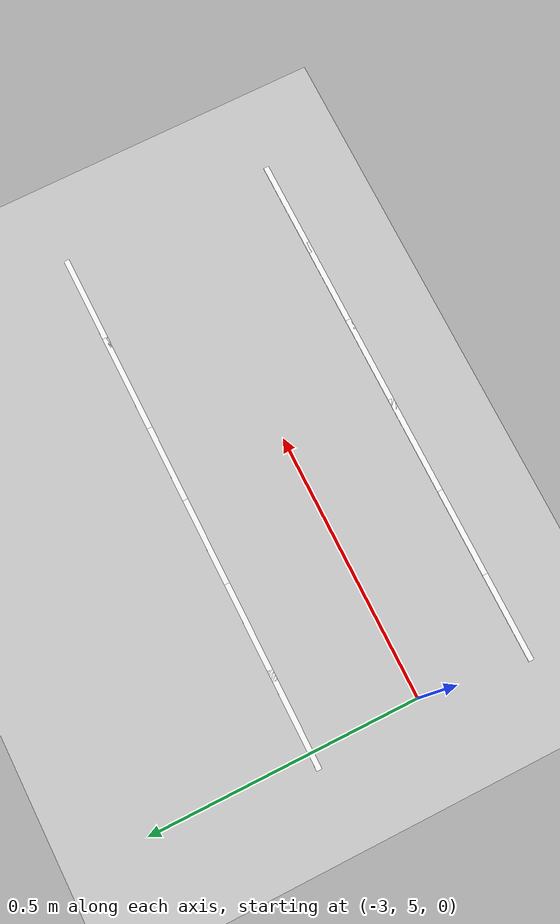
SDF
<sdf version="1.7">
 <world name="default">
  <model name="ground_plane">
   <static>1</static>
   <link name="link">
    <collision name="collision">
     <geometry><plane><normal>0 0 1</normal><size>100 100</size></plane></geometry>
     <surface>
      <contact><collide_bitmask>65535</collide_bitmask></contact>
      <friction><ode><mu>100</mu><mu2>50</mu2></ode></friction>
     </surface>
    </collision>
    <visual name="visual">
     <cast_shadows>0</cast_shadows>
     <geometry><plane><normal>0 0 1</normal><size>100 100</size></plane></geometry>
     <material>
      <script><uri>file://media/materials/scripts/gazebo.material</uri><name>Gazebo/Grey</name></script>
     </material>
    </visual>
   </link>
  </model>
  <model name="lane_line_left_237">
   <static>1</static>
   <link name="link">
    <pose>0 0 -0.004 0 -0 0</pose>
    <visual name="visual">
     <geometry><box><size>0.1833 0.01 0.01</size></box></geometry>
     <material><ambient>1 1 1 1</ambient><diffuse>1 1 1 1</diffuse></material>
    </visual>
    <collision name="collision"><geometry><box><size>0.1833 0.01 0.01</size></box></geometry></collision>
   </link>
   <pose>-2.12245 4.8 0 0 -0 3.14159</pose>
  </model>
  <model name="lane_line_right_237">
   <static>1</static>
   <link name="link">
    <pose>0 0 -0.004 0 -0 0</pose>
    <visual name="visual">
     <geometry><box><size>0.1833 0.01 0.01</size></box></geometry>
     <material><ambient>1 1 1 1</ambient><diffuse>1 1 1 1</diffuse></material>
    </visual>
    <collision name="collision"><geometry><box><size>0.1833 0.01 0.01</size></box></geometry></collision>
   </link>
   <pose>-2.12245 5.2 0 0 -0 3.14159</pose>
  </model>
  <model name="lane_line_left_238">
   <static>1</static>
   <link name="link">
    <pose>0 0 -0.004 0 -0 0</pose>
    <visual name="visual">
     <geometry><box><size>0.1833 0.01 0.01</size></box></geometry>
     <material><ambient>1 1 1 1</ambient><diffuse>1 1 1 1</diffuse></material>
    </visual>
    <collision name="collision"><geometry><box><size>0.1833 0.01 0.01</size></box></geometry></collision>
   </link>
   <pose>-2.28571 4.8 0 0 -0 3.14159</pose>
  </model>
  <model name="lane_line_right_238">
   <static>1</static>
   <link name="link">
    <pose>0 0 -0.004 0 -0 0</pose>
    <visual name="visual">
     <geometry><box><size>0.1833 0.01 0.01</size></box></geometry>
     <material><ambient>1 1 1 1</ambient><diffuse>1 1 1 1</diffuse></material>
    </visual>
    <collision name="collision"><geometry><box><size>0.1833 0.01 0.01</size></box></geometry></collision>
   </link>
   <pose>-2.28571 5.2 0 0 -0 3.14159</pose>
  </model>
  <model name="lane_line_left_239">
   <static>1</static>
   <link name="link">
    <pose>0 0 -0.004 0 -0 0</pose>
    <visual name="visual">
     <geometry><box><size>0.1833 0.01 0.01</size></box></geometry>
     <material><ambient>1 1 1 1</ambient><diffuse>1 1 1 1</diffuse></material>
    </visual>
    <collision name="collision"><geometry><box><size>0.1833 0.01 0.01</size></box></geometry></collision>
   </link>
   <pose>-2.44898 4.8 0 0 -0 3.14159</pose>
  </model>
  <model name="lane_line_right_239">
   <static>1</static>
   <link name="link">
    <pose>0 0 -0.004 0 -0 0</pose>
    <visual name="visual">
     <geometry><box><size>0.1833 0.01 0.01</size></box></geometry>
     <material><ambient>1 1 1 1</ambient><diffuse>1 1 1 1</diffuse></material>
    </visual>
    <collision name="collision"><geometry><box><size>0.1833 0.01 0.01</size></box></geometry></collision>
   </link>
   <pose>-2.44898 5.2 0 0 -0 3.14159</pose>
  </model>
  <model name="lane_line_left_240">
   <static>1</static>
   <link name="link">
    <pose>0 0 -0.004 0 -0 0</pose>
    <visual name="visual">
     <geometry><box><size>0.1833 0.01 0.01</size></box></geometry>
     <material><ambient>1 1 1 1</ambient><diffuse>1 1 1 1</diffuse></material>
    </visual>
    <collision name="collision"><geometry><box><size>0.1833 0.01 0.01</size></box></geometry></collision>
   </link>
   <pose>-2.61224 4.8 0 0 -0 3.14159</pose>
  </model>
  <model name="lane_line_right_240">
   <static>1</static>
   <link name="link">
    <pose>0 0 -0.004 0 -0 0</pose>
    <visual name="visual">
     <geometry><box><size>0.1833 0.01 0.01</size></box></geometry>
     <material><ambient>1 1 1 1</ambient><diffuse>1 1 1 1</diffuse></material>
    </visual>
    <collision name="collision"><geometry><box><size>0.1833 0.01 0.01</size></box></geometry></collision>
   </link>
   <pose>-2.61224 5.2 0 0 -0 3.14159</pose>
  </model>
  <model name="lane_line_left_241">
   <static>1</static>
   <link name="link">
    <pose>0 0 -0.004 0 -0 0</pose>
    <visual name="visual">
     <geometry><box><size>0.1833 0.01 0.01</size></box></geometry>
     <material><ambient>1 1 1 1</ambient><diffuse>1 1 1 1</diffuse></material>
    </visual>
    <collision name="collision"><geometry><box><size>0.1833 0.01 0.01</size></box></geometry></collision>
   </link>
   <pose>-2.77551 4.8 0 0 -0 3.14159</pose>
  </model>
  <model name="lane_line_right_241">
   <static>1</static>
   <link name="link">
    <pose>0 0 -0.004 0 -0 0</pose>
    <visual name="visual">
     <geometry><box><size>0.1833 0.01 0.01</size></box></geometry>
     <material><ambient>1 1 1 1</ambient><diffuse>1 1 1 1</diffuse></material>
    </visual>
    <collision name="collision"><geometry><box><size>0.1833 0.01 0.01</size></box></geometry></collision>
   </link>
   <pose>-2.77551 5.2 0 0 -0 3.14159</pose>
  </model>
  <model name="lane_line_left_242">
   <static>1</static>
   <link name="link">
    <pose>0 0 -0.004 0 -0 0</pose>
    <visual name="visual">
     <geometry><box><size>0.1833 0.01 0.01</size></box></geometry>
     <material><ambient>1 1 1 1</ambient><diffuse>1 1 1 1</diffuse></material>
    </visual>
    <collision name="collision"><geometry><box><size>0.1833 0.01 0.01</size></box></geometry></collision>
   </link>
   <pose>-2.93878 4.8 0 0 -0 3.14159</pose>
  </model>
  <model name="lane_line_right_242">
   <static>1</static>
   <link name="link">
    <pose>0 0 -0.004 0 -0 0</pose>
    <visual name="visual">
     <geometry><box><size>0.1833 0.01 0.01</size></box></geometry>
     <material><ambient>1 1 1 1</ambient><diffuse>1 1 1 1</diffuse></material>
    </visual>
    <collision name="collision"><geometry><box><size>0.1833 0.01 0.01</size></box></geometry></collision>
   </link>
   <pose>-2.93878 5.2 0 0 -0 3.14159</pose>
  </model>
 </world>
</sdf>
